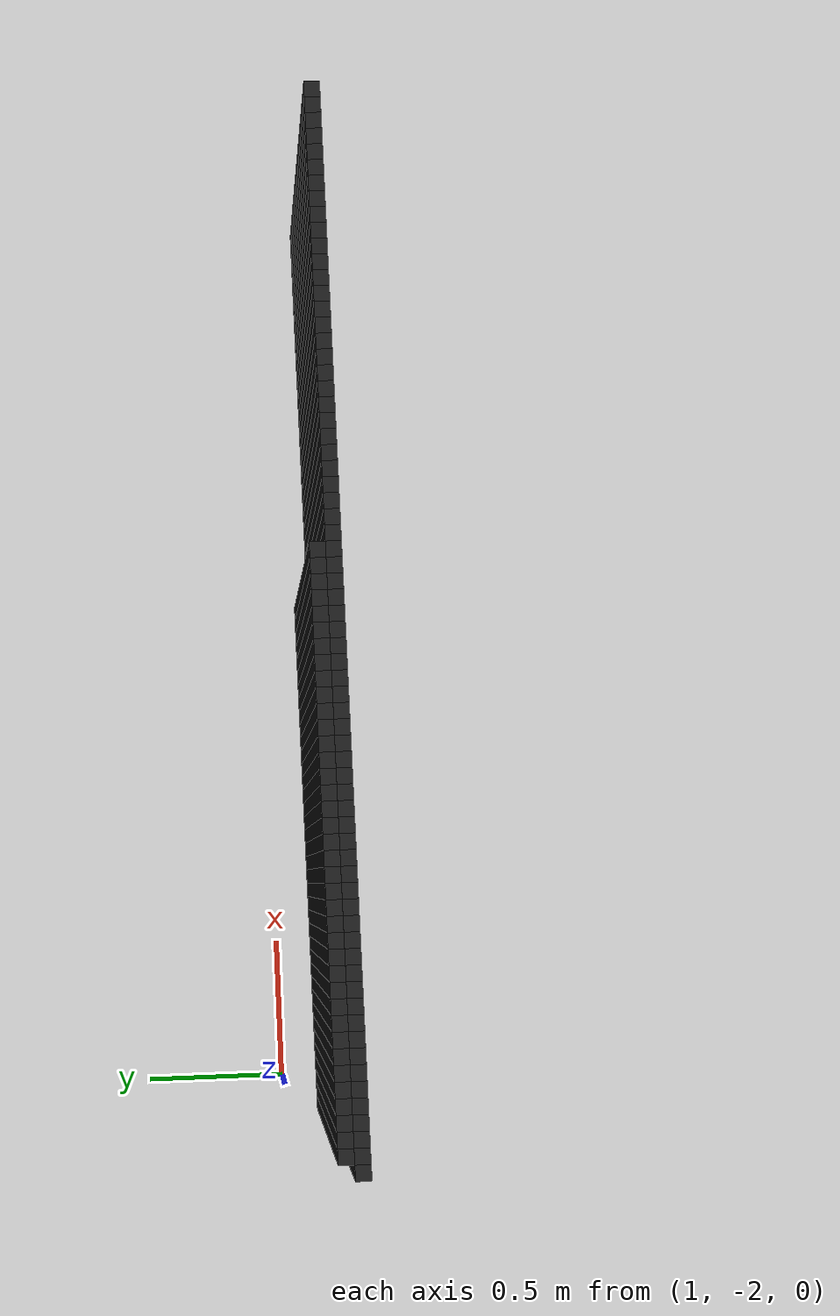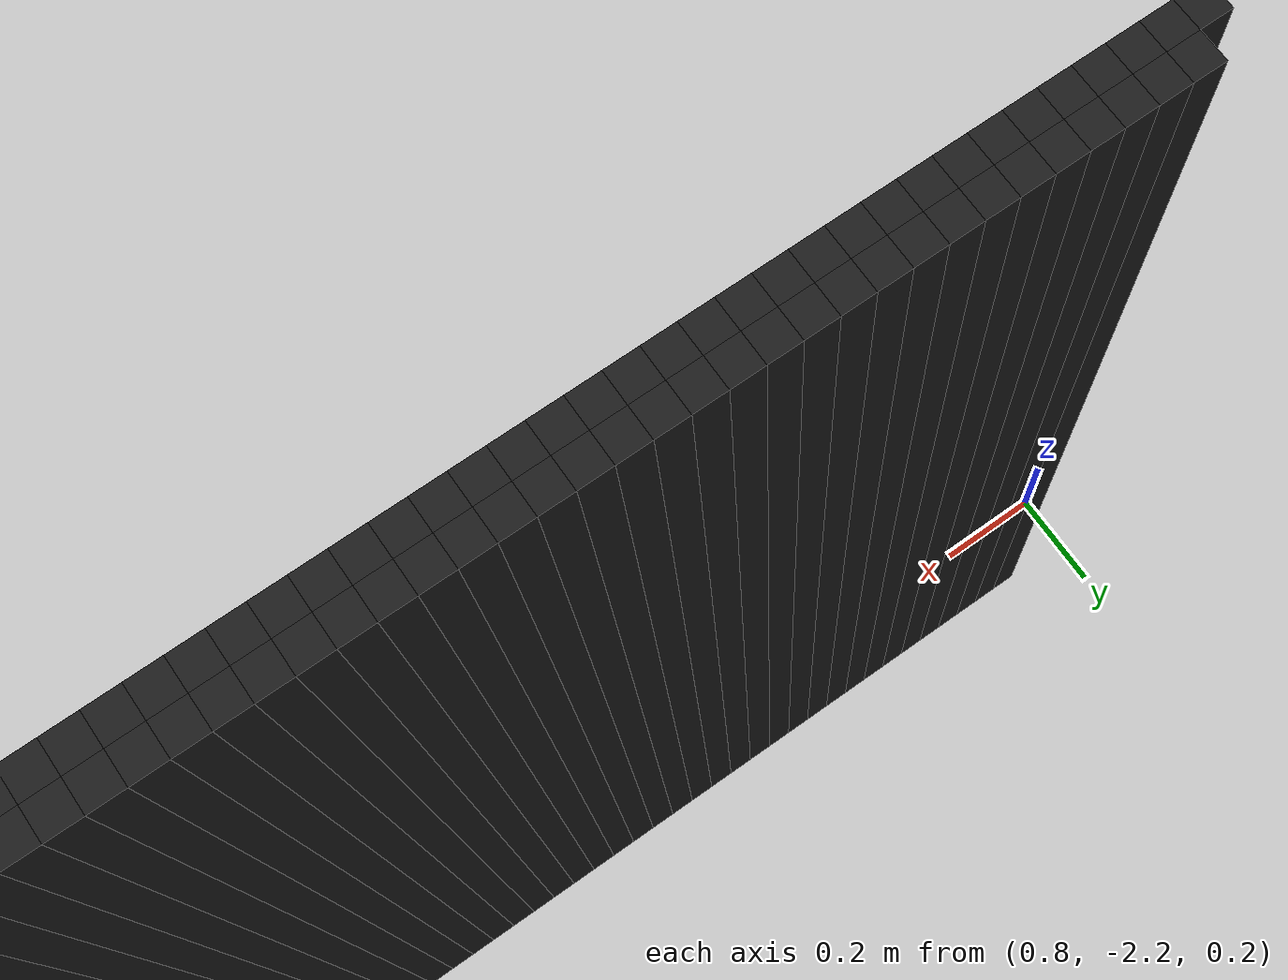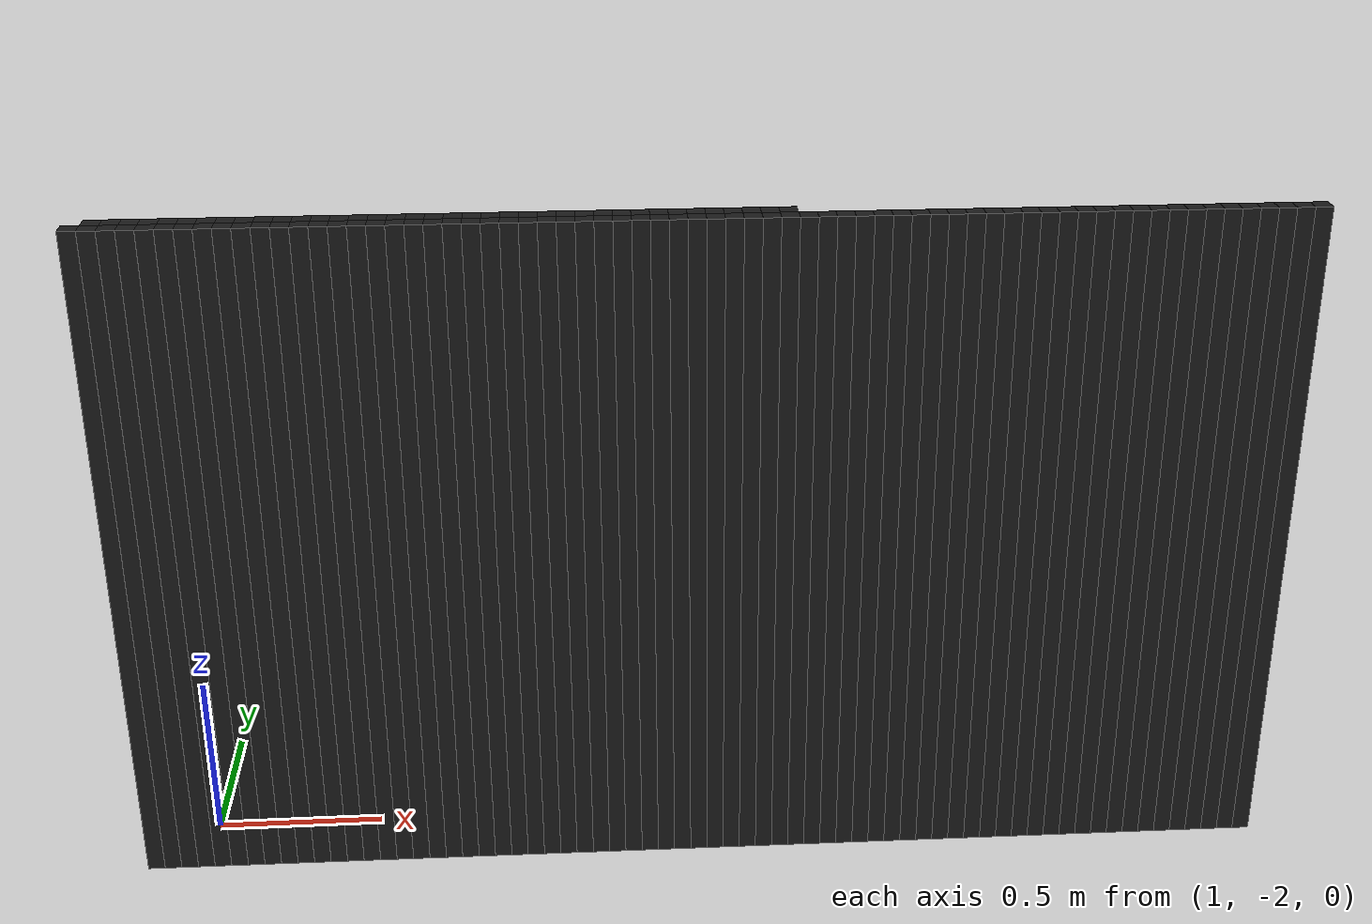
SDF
<sdf version="1.6">
 <model name="obstacle_108_210">
  <pose>0.8900000000000006 -2.1500000000000004 1.0 0 0 0</pose>
  <static>true</static>
  <link name="box_link">
   <collision name="box_collision"><geometry><box><size>0.05 0.05 2.0</size></box></geometry></collision>
   <visual name="box_visual">
    <geometry><box><size>0.05 0.05 2.0</size></box></geometry>
    <material><ambient>0 0 0 1</ambient><diffuse>0.1 0.1 0.1 1</diffuse></material>
   </visual>
  </link>
 </model>
 <model name="obstacle_109_210">
  <pose>0.9400000000000004 -2.1500000000000004 1.0 0 0 0</pose>
  <static>true</static>
  <link name="box_link">
   <collision name="box_collision"><geometry><box><size>0.05 0.05 2.0</size></box></geometry></collision>
   <visual name="box_visual">
    <geometry><box><size>0.05 0.05 2.0</size></box></geometry>
    <material><ambient>0 0 0 1</ambient><diffuse>0.1 0.1 0.1 1</diffuse></material>
   </visual>
  </link>
 </model>
 <model name="obstacle_110_210">
  <pose>0.9900000000000002 -2.1500000000000004 1.0 0 0 0</pose>
  <static>true</static>
  <link name="box_link">
   <collision name="box_collision"><geometry><box><size>0.05 0.05 2.0</size></box></geometry></collision>
   <visual name="box_visual">
    <geometry><box><size>0.05 0.05 2.0</size></box></geometry>
    <material><ambient>0 0 0 1</ambient><diffuse>0.1 0.1 0.1 1</diffuse></material>
   </visual>
  </link>
 </model>
 <model name="obstacle_111_210">
  <pose>1.040000000000001 -2.1500000000000004 1.0 0 0 0</pose>
  <static>true</static>
  <link name="box_link">
   <collision name="box_collision"><geometry><box><size>0.05 0.05 2.0</size></box></geometry></collision>
   <visual name="box_visual">
    <geometry><box><size>0.05 0.05 2.0</size></box></geometry>
    <material><ambient>0 0 0 1</ambient><diffuse>0.1 0.1 0.1 1</diffuse></material>
   </visual>
  </link>
 </model>
 <model name="obstacle_112_210">
  <pose>1.0900000000000007 -2.1500000000000004 1.0 0 0 0</pose>
  <static>true</static>
  <link name="box_link">
   <collision name="box_collision"><geometry><box><size>0.05 0.05 2.0</size></box></geometry></collision>
   <visual name="box_visual">
    <geometry><box><size>0.05 0.05 2.0</size></box></geometry>
    <material><ambient>0 0 0 1</ambient><diffuse>0.1 0.1 0.1 1</diffuse></material>
   </visual>
  </link>
 </model>
 <model name="obstacle_113_210">
  <pose>1.1400000000000006 -2.1500000000000004 1.0 0 0 0</pose>
  <static>true</static>
  <link name="box_link">
   <collision name="box_collision"><geometry><box><size>0.05 0.05 2.0</size></box></geometry></collision>
   <visual name="box_visual">
    <geometry><box><size>0.05 0.05 2.0</size></box></geometry>
    <material><ambient>0 0 0 1</ambient><diffuse>0.1 0.1 0.1 1</diffuse></material>
   </visual>
  </link>
 </model>
 <model name="obstacle_114_210">
  <pose>1.1900000000000004 -2.1500000000000004 1.0 0 0 0</pose>
  <static>true</static>
  <link name="box_link">
   <collision name="box_collision"><geometry><box><size>0.05 0.05 2.0</size></box></geometry></collision>
   <visual name="box_visual">
    <geometry><box><size>0.05 0.05 2.0</size></box></geometry>
    <material><ambient>0 0 0 1</ambient><diffuse>0.1 0.1 0.1 1</diffuse></material>
   </visual>
  </link>
 </model>
 <model name="obstacle_115_210">
  <pose>1.2400000000000002 -2.1500000000000004 1.0 0 0 0</pose>
  <static>true</static>
  <link name="box_link">
   <collision name="box_collision"><geometry><box><size>0.05 0.05 2.0</size></box></geometry></collision>
   <visual name="box_visual">
    <geometry><box><size>0.05 0.05 2.0</size></box></geometry>
    <material><ambient>0 0 0 1</ambient><diffuse>0.1 0.1 0.1 1</diffuse></material>
   </visual>
  </link>
 </model>
 <model name="obstacle_116_210">
  <pose>1.290000000000001 -2.1500000000000004 1.0 0 0 0</pose>
  <static>true</static>
  <link name="box_link">
   <collision name="box_collision"><geometry><box><size>0.05 0.05 2.0</size></box></geometry></collision>
   <visual name="box_visual">
    <geometry><box><size>0.05 0.05 2.0</size></box></geometry>
    <material><ambient>0 0 0 1</ambient><diffuse>0.1 0.1 0.1 1</diffuse></material>
   </visual>
  </link>
 </model>
 <model name="obstacle_117_210">
  <pose>1.3400000000000007 -2.1500000000000004 1.0 0 0 0</pose>
  <static>true</static>
  <link name="box_link">
   <collision name="box_collision"><geometry><box><size>0.05 0.05 2.0</size></box></geometry></collision>
   <visual name="box_visual">
    <geometry><box><size>0.05 0.05 2.0</size></box></geometry>
    <material><ambient>0 0 0 1</ambient><diffuse>0.1 0.1 0.1 1</diffuse></material>
   </visual>
  </link>
 </model>
 <model name="obstacle_118_210">
  <pose>1.3900000000000006 -2.1500000000000004 1.0 0 0 0</pose>
  <static>true</static>
  <link name="box_link">
   <collision name="box_collision"><geometry><box><size>0.05 0.05 2.0</size></box></geometry></collision>
   <visual name="box_visual">
    <geometry><box><size>0.05 0.05 2.0</size></box></geometry>
    <material><ambient>0 0 0 1</ambient><diffuse>0.1 0.1 0.1 1</diffuse></material>
   </visual>
  </link>
 </model>
 <model name="obstacle_119_210">
  <pose>1.4400000000000004 -2.1500000000000004 1.0 0 0 0</pose>
  <static>true</static>
  <link name="box_link">
   <collision name="box_collision"><geometry><box><size>0.05 0.05 2.0</size></box></geometry></collision>
   <visual name="box_visual">
    <geometry><box><size>0.05 0.05 2.0</size></box></geometry>
    <material><ambient>0 0 0 1</ambient><diffuse>0.1 0.1 0.1 1</diffuse></material>
   </visual>
  </link>
 </model>
 <model name="obstacle_120_210">
  <pose>1.4900000000000002 -2.1500000000000004 1.0 0 0 0</pose>
  <static>true</static>
  <link name="box_link">
   <collision name="box_collision"><geometry><box><size>0.05 0.05 2.0</size></box></geometry></collision>
   <visual name="box_visual">
    <geometry><box><size>0.05 0.05 2.0</size></box></geometry>
    <material><ambient>0 0 0 1</ambient><diffuse>0.1 0.1 0.1 1</diffuse></material>
   </visual>
  </link>
 </model>
 <model name="obstacle_121_210">
  <pose>1.540000000000001 -2.1500000000000004 1.0 0 0 0</pose>
  <static>true</static>
  <link name="box_link">
   <collision name="box_collision"><geometry><box><size>0.05 0.05 2.0</size></box></geometry></collision>
   <visual name="box_visual">
    <geometry><box><size>0.05 0.05 2.0</size></box></geometry>
    <material><ambient>0 0 0 1</ambient><diffuse>0.1 0.1 0.1 1</diffuse></material>
   </visual>
  </link>
 </model>
 <model name="obstacle_122_210">
  <pose>1.5900000000000007 -2.1500000000000004 1.0 0 0 0</pose>
  <static>true</static>
  <link name="box_link">
   <collision name="box_collision"><geometry><box><size>0.05 0.05 2.0</size></box></geometry></collision>
   <visual name="box_visual">
    <geometry><box><size>0.05 0.05 2.0</size></box></geometry>
    <material><ambient>0 0 0 1</ambient><diffuse>0.1 0.1 0.1 1</diffuse></material>
   </visual>
  </link>
 </model>
 <model name="obstacle_123_210">
  <pose>1.6400000000000006 -2.1500000000000004 1.0 0 0 0</pose>
  <static>true</static>
  <link name="box_link">
   <collision name="box_collision"><geometry><box><size>0.05 0.05 2.0</size></box></geometry></collision>
   <visual name="box_visual">
    <geometry><box><size>0.05 0.05 2.0</size></box></geometry>
    <material><ambient>0 0 0 1</ambient><diffuse>0.1 0.1 0.1 1</diffuse></material>
   </visual>
  </link>
 </model>
 <model name="obstacle_124_210">
  <pose>1.6900000000000004 -2.1500000000000004 1.0 0 0 0</pose>
  <static>true</static>
  <link name="box_link">
   <collision name="box_collision"><geometry><box><size>0.05 0.05 2.0</size></box></geometry></collision>
   <visual name="box_visual">
    <geometry><box><size>0.05 0.05 2.0</size></box></geometry>
    <material><ambient>0 0 0 1</ambient><diffuse>0.1 0.1 0.1 1</diffuse></material>
   </visual>
  </link>
 </model>
 <model name="obstacle_125_210">
  <pose>1.7400000000000002 -2.1500000000000004 1.0 0 0 0</pose>
  <static>true</static>
  <link name="box_link">
   <collision name="box_collision"><geometry><box><size>0.05 0.05 2.0</size></box></geometry></collision>
   <visual name="box_visual">
    <geometry><box><size>0.05 0.05 2.0</size></box></geometry>
    <material><ambient>0 0 0 1</ambient><diffuse>0.1 0.1 0.1 1</diffuse></material>
   </visual>
  </link>
 </model>
 <model name="obstacle_126_210">
  <pose>1.790000000000001 -2.1500000000000004 1.0 0 0 0</pose>
  <static>true</static>
  <link name="box_link">
   <collision name="box_collision"><geometry><box><size>0.05 0.05 2.0</size></box></geometry></collision>
   <visual name="box_visual">
    <geometry><box><size>0.05 0.05 2.0</size></box></geometry>
    <material><ambient>0 0 0 1</ambient><diffuse>0.1 0.1 0.1 1</diffuse></material>
   </visual>
  </link>
 </model>
 <model name="obstacle_127_210">
  <pose>1.8400000000000007 -2.1500000000000004 1.0 0 0 0</pose>
  <static>true</static>
  <link name="box_link">
   <collision name="box_collision"><geometry><box><size>0.05 0.05 2.0</size></box></geometry></collision>
   <visual name="box_visual">
    <geometry><box><size>0.05 0.05 2.0</size></box></geometry>
    <material><ambient>0 0 0 1</ambient><diffuse>0.1 0.1 0.1 1</diffuse></material>
   </visual>
  </link>
 </model>
 <model name="obstacle_128_210">
  <pose>1.8900000000000006 -2.1500000000000004 1.0 0 0 0</pose>
  <static>true</static>
  <link name="box_link">
   <collision name="box_collision"><geometry><box><size>0.05 0.05 2.0</size></box></geometry></collision>
   <visual name="box_visual">
    <geometry><box><size>0.05 0.05 2.0</size></box></geometry>
    <material><ambient>0 0 0 1</ambient><diffuse>0.1 0.1 0.1 1</diffuse></material>
   </visual>
  </link>
 </model>
 <model name="obstacle_129_210">
  <pose>1.9400000000000004 -2.1500000000000004 1.0 0 0 0</pose>
  <static>true</static>
  <link name="box_link">
   <collision name="box_collision"><geometry><box><size>0.05 0.05 2.0</size></box></geometry></collision>
   <visual name="box_visual">
    <geometry><box><size>0.05 0.05 2.0</size></box></geometry>
    <material><ambient>0 0 0 1</ambient><diffuse>0.1 0.1 0.1 1</diffuse></material>
   </visual>
  </link>
 </model>
 <model name="obstacle_130_210">
  <pose>1.9900000000000002 -2.1500000000000004 1.0 0 0 0</pose>
  <static>true</static>
  <link name="box_link">
   <collision name="box_collision"><geometry><box><size>0.05 0.05 2.0</size></box></geometry></collision>
   <visual name="box_visual">
    <geometry><box><size>0.05 0.05 2.0</size></box></geometry>
    <material><ambient>0 0 0 1</ambient><diffuse>0.1 0.1 0.1 1</diffuse></material>
   </visual>
  </link>
 </model>
 <model name="obstacle_131_210">
  <pose>2.040000000000001 -2.1500000000000004 1.0 0 0 0</pose>
  <static>true</static>
  <link name="box_link">
   <collision name="box_collision"><geometry><box><size>0.05 0.05 2.0</size></box></geometry></collision>
   <visual name="box_visual">
    <geometry><box><size>0.05 0.05 2.0</size></box></geometry>
    <material><ambient>0 0 0 1</ambient><diffuse>0.1 0.1 0.1 1</diffuse></material>
   </visual>
  </link>
 </model>
 <model name="obstacle_132_210">
  <pose>2.0900000000000007 -2.1500000000000004 1.0 0 0 0</pose>
  <static>true</static>
  <link name="box_link">
   <collision name="box_collision"><geometry><box><size>0.05 0.05 2.0</size></box></geometry></collision>
   <visual name="box_visual">
    <geometry><box><size>0.05 0.05 2.0</size></box></geometry>
    <material><ambient>0 0 0 1</ambient><diffuse>0.1 0.1 0.1 1</diffuse></material>
   </visual>
  </link>
 </model>
 <model name="obstacle_133_210">
  <pose>2.1400000000000006 -2.1500000000000004 1.0 0 0 0</pose>
  <static>true</static>
  <link name="box_link">
   <collision name="box_collision"><geometry><box><size>0.05 0.05 2.0</size></box></geometry></collision>
   <visual name="box_visual">
    <geometry><box><size>0.05 0.05 2.0</size></box></geometry>
    <material><ambient>0 0 0 1</ambient><diffuse>0.1 0.1 0.1 1</diffuse></material>
   </visual>
  </link>
 </model>
 <model name="obstacle_134_210">
  <pose>2.1900000000000004 -2.1500000000000004 1.0 0 0 0</pose>
  <static>true</static>
  <link name="box_link">
   <collision name="box_collision"><geometry><box><size>0.05 0.05 2.0</size></box></geometry></collision>
   <visual name="box_visual">
    <geometry><box><size>0.05 0.05 2.0</size></box></geometry>
    <material><ambient>0 0 0 1</ambient><diffuse>0.1 0.1 0.1 1</diffuse></material>
   </visual>
  </link>
 </model>
 <model name="obstacle_135_210">
  <pose>2.24 -2.1500000000000004 1.0 0 0 0</pose>
  <static>true</static>
  <link name="box_link">
   <collision name="box_collision"><geometry><box><size>0.05 0.05 2.0</size></box></geometry></collision>
   <visual name="box_visual">
    <geometry><box><size>0.05 0.05 2.0</size></box></geometry>
    <material><ambient>0 0 0 1</ambient><diffuse>0.1 0.1 0.1 1</diffuse></material>
   </visual>
  </link>
 </model>
 <model name="obstacle_136_210">
  <pose>2.290000000000001 -2.1500000000000004 1.0 0 0 0</pose>
  <static>true</static>
  <link name="box_link">
   <collision name="box_collision"><geometry><box><size>0.05 0.05 2.0</size></box></geometry></collision>
   <visual name="box_visual">
    <geometry><box><size>0.05 0.05 2.0</size></box></geometry>
    <material><ambient>0 0 0 1</ambient><diffuse>0.1 0.1 0.1 1</diffuse></material>
   </visual>
  </link>
 </model>
 <model name="obstacle_137_210">
  <pose>2.3400000000000007 -2.1500000000000004 1.0 0 0 0</pose>
  <static>true</static>
  <link name="box_link">
   <collision name="box_collision"><geometry><box><size>0.05 0.05 2.0</size></box></geometry></collision>
   <visual name="box_visual">
    <geometry><box><size>0.05 0.05 2.0</size></box></geometry>
    <material><ambient>0 0 0 1</ambient><diffuse>0.1 0.1 0.1 1</diffuse></material>
   </visual>
  </link>
 </model>
 <model name="obstacle_138_210">
  <pose>2.3900000000000006 -2.1500000000000004 1.0 0 0 0</pose>
  <static>true</static>
  <link name="box_link">
   <collision name="box_collision"><geometry><box><size>0.05 0.05 2.0</size></box></geometry></collision>
   <visual name="box_visual">
    <geometry><box><size>0.05 0.05 2.0</size></box></geometry>
    <material><ambient>0 0 0 1</ambient><diffuse>0.1 0.1 0.1 1</diffuse></material>
   </visual>
  </link>
 </model>
 <model name="obstacle_139_210">
  <pose>2.4400000000000004 -2.1500000000000004 1.0 0 0 0</pose>
  <static>true</static>
  <link name="box_link">
   <collision name="box_collision"><geometry><box><size>0.05 0.05 2.0</size></box></geometry></collision>
   <visual name="box_visual">
    <geometry><box><size>0.05 0.05 2.0</size></box></geometry>
    <material><ambient>0 0 0 1</ambient><diffuse>0.1 0.1 0.1 1</diffuse></material>
   </visual>
  </link>
 </model>
 <model name="obstacle_140_210">
  <pose>2.49 -2.1500000000000004 1.0 0 0 0</pose>
  <static>true</static>
  <link name="box_link">
   <collision name="box_collision"><geometry><box><size>0.05 0.05 2.0</size></box></geometry></collision>
   <visual name="box_visual">
    <geometry><box><size>0.05 0.05 2.0</size></box></geometry>
    <material><ambient>0 0 0 1</ambient><diffuse>0.1 0.1 0.1 1</diffuse></material>
   </visual>
  </link>
 </model>
 <model name="obstacle_141_210">
  <pose>2.540000000000001 -2.1500000000000004 1.0 0 0 0</pose>
  <static>true</static>
  <link name="box_link">
   <collision name="box_collision"><geometry><box><size>0.05 0.05 2.0</size></box></geometry></collision>
   <visual name="box_visual">
    <geometry><box><size>0.05 0.05 2.0</size></box></geometry>
    <material><ambient>0 0 0 1</ambient><diffuse>0.1 0.1 0.1 1</diffuse></material>
   </visual>
  </link>
 </model>
 <model name="obstacle_142_210">
  <pose>2.5900000000000007 -2.1500000000000004 1.0 0 0 0</pose>
  <static>true</static>
  <link name="box_link">
   <collision name="box_collision"><geometry><box><size>0.05 0.05 2.0</size></box></geometry></collision>
   <visual name="box_visual">
    <geometry><box><size>0.05 0.05 2.0</size></box></geometry>
    <material><ambient>0 0 0 1</ambient><diffuse>0.1 0.1 0.1 1</diffuse></material>
   </visual>
  </link>
 </model>
 <model name="obstacle_143_210">
  <pose>2.6400000000000006 -2.1500000000000004 1.0 0 0 0</pose>
  <static>true</static>
  <link name="box_link">
   <collision name="box_collision"><geometry><box><size>0.05 0.05 2.0</size></box></geometry></collision>
   <visual name="box_visual">
    <geometry><box><size>0.05 0.05 2.0</size></box></geometry>
    <material><ambient>0 0 0 1</ambient><diffuse>0.1 0.1 0.1 1</diffuse></material>
   </visual>
  </link>
 </model>
 <model name="obstacle_144_210">
  <pose>2.6900000000000004 -2.1500000000000004 1.0 0 0 0</pose>
  <static>true</static>
  <link name="box_link">
   <collision name="box_collision"><geometry><box><size>0.05 0.05 2.0</size></box></geometry></collision>
   <visual name="box_visual">
    <geometry><box><size>0.05 0.05 2.0</size></box></geometry>
    <material><ambient>0 0 0 1</ambient><diffuse>0.1 0.1 0.1 1</diffuse></material>
   </visual>
  </link>
 </model>
 <model name="obstacle_145_210">
  <pose>2.74 -2.1500000000000004 1.0 0 0 0</pose>
  <static>true</static>
  <link name="box_link">
   <collision name="box_collision"><geometry><box><size>0.05 0.05 2.0</size></box></geometry></collision>
   <visual name="box_visual">
    <geometry><box><size>0.05 0.05 2.0</size></box></geometry>
    <material><ambient>0 0 0 1</ambient><diffuse>0.1 0.1 0.1 1</diffuse></material>
   </visual>
  </link>
 </model>
 <model name="obstacle_107_211">
  <pose>0.8400000000000007 -2.2 1.0 0 0 0</pose>
  <static>true</static>
  <link name="box_link">
   <collision name="box_collision"><geometry><box><size>0.05 0.05 2.0</size></box></geometry></collision>
   <visual name="box_visual">
    <geometry><box><size>0.05 0.05 2.0</size></box></geometry>
    <material><ambient>0 0 0 1</ambient><diffuse>0.1 0.1 0.1 1</diffuse></material>
   </visual>
  </link>
 </model>
 <model name="obstacle_108_211">
  <pose>0.8900000000000006 -2.2 1.0 0 0 0</pose>
  <static>true</static>
  <link name="box_link">
   <collision name="box_collision"><geometry><box><size>0.05 0.05 2.0</size></box></geometry></collision>
   <visual name="box_visual">
    <geometry><box><size>0.05 0.05 2.0</size></box></geometry>
    <material><ambient>0 0 0 1</ambient><diffuse>0.1 0.1 0.1 1</diffuse></material>
   </visual>
  </link>
 </model>
 <model name="obstacle_109_211">
  <pose>0.9400000000000004 -2.2 1.0 0 0 0</pose>
  <static>true</static>
  <link name="box_link">
   <collision name="box_collision"><geometry><box><size>0.05 0.05 2.0</size></box></geometry></collision>
   <visual name="box_visual">
    <geometry><box><size>0.05 0.05 2.0</size></box></geometry>
    <material><ambient>0 0 0 1</ambient><diffuse>0.1 0.1 0.1 1</diffuse></material>
   </visual>
  </link>
 </model>
 <model name="obstacle_110_211">
  <pose>0.9900000000000002 -2.2 1.0 0 0 0</pose>
  <static>true</static>
  <link name="box_link">
   <collision name="box_collision"><geometry><box><size>0.05 0.05 2.0</size></box></geometry></collision>
   <visual name="box_visual">
    <geometry><box><size>0.05 0.05 2.0</size></box></geometry>
    <material><ambient>0 0 0 1</ambient><diffuse>0.1 0.1 0.1 1</diffuse></material>
   </visual>
  </link>
 </model>
 <model name="obstacle_111_211">
  <pose>1.040000000000001 -2.2 1.0 0 0 0</pose>
  <static>true</static>
  <link name="box_link">
   <collision name="box_collision"><geometry><box><size>0.05 0.05 2.0</size></box></geometry></collision>
   <visual name="box_visual">
    <geometry><box><size>0.05 0.05 2.0</size></box></geometry>
    <material><ambient>0 0 0 1</ambient><diffuse>0.1 0.1 0.1 1</diffuse></material>
   </visual>
  </link>
 </model>
 <model name="obstacle_112_211">
  <pose>1.0900000000000007 -2.2 1.0 0 0 0</pose>
  <static>true</static>
  <link name="box_link">
   <collision name="box_collision"><geometry><box><size>0.05 0.05 2.0</size></box></geometry></collision>
   <visual name="box_visual">
    <geometry><box><size>0.05 0.05 2.0</size></box></geometry>
    <material><ambient>0 0 0 1</ambient><diffuse>0.1 0.1 0.1 1</diffuse></material>
   </visual>
  </link>
 </model>
 <model name="obstacle_113_211">
  <pose>1.1400000000000006 -2.2 1.0 0 0 0</pose>
  <static>true</static>
  <link name="box_link">
   <collision name="box_collision"><geometry><box><size>0.05 0.05 2.0</size></box></geometry></collision>
   <visual name="box_visual">
    <geometry><box><size>0.05 0.05 2.0</size></box></geometry>
    <material><ambient>0 0 0 1</ambient><diffuse>0.1 0.1 0.1 1</diffuse></material>
   </visual>
  </link>
 </model>
 <model name="obstacle_114_211">
  <pose>1.1900000000000004 -2.2 1.0 0 0 0</pose>
  <static>true</static>
  <link name="box_link">
   <collision name="box_collision"><geometry><box><size>0.05 0.05 2.0</size></box></geometry></collision>
   <visual name="box_visual">
    <geometry><box><size>0.05 0.05 2.0</size></box></geometry>
    <material><ambient>0 0 0 1</ambient><diffuse>0.1 0.1 0.1 1</diffuse></material>
   </visual>
  </link>
 </model>
 <model name="obstacle_115_211">
  <pose>1.2400000000000002 -2.2 1.0 0 0 0</pose>
  <static>true</static>
  <link name="box_link">
   <collision name="box_collision"><geometry><box><size>0.05 0.05 2.0</size></box></geometry></collision>
   <visual name="box_visual">
    <geometry><box><size>0.05 0.05 2.0</size></box></geometry>
    <material><ambient>0 0 0 1</ambient><diffuse>0.1 0.1 0.1 1</diffuse></material>
   </visual>
  </link>
 </model>
 <model name="obstacle_116_211">
  <pose>1.290000000000001 -2.2 1.0 0 0 0</pose>
  <static>true</static>
  <link name="box_link">
   <collision name="box_collision"><geometry><box><size>0.05 0.05 2.0</size></box></geometry></collision>
   <visual name="box_visual">
    <geometry><box><size>0.05 0.05 2.0</size></box></geometry>
    <material><ambient>0 0 0 1</ambient><diffuse>0.1 0.1 0.1 1</diffuse></material>
   </visual>
  </link>
 </model>
 <model name="obstacle_117_211">
  <pose>1.3400000000000007 -2.2 1.0 0 0 0</pose>
  <static>true</static>
  <link name="box_link">
   <collision name="box_collision"><geometry><box><size>0.05 0.05 2.0</size></box></geometry></collision>
   <visual name="box_visual">
    <geometry><box><size>0.05 0.05 2.0</size></box></geometry>
    <material><ambient>0 0 0 1</ambient><diffuse>0.1 0.1 0.1 1</diffuse></material>
   </visual>
  </link>
 </model>
 <model name="obstacle_118_211">
  <pose>1.3900000000000006 -2.2 1.0 0 0 0</pose>
  <static>true</static>
  <link name="box_link">
   <collision name="box_collision"><geometry><box><size>0.05 0.05 2.0</size></box></geometry></collision>
   <visual name="box_visual">
    <geometry><box><size>0.05 0.05 2.0</size></box></geometry>
    <material><ambient>0 0 0 1</ambient><diffuse>0.1 0.1 0.1 1</diffuse></material>
   </visual>
  </link>
 </model>
 <model name="obstacle_119_211">
  <pose>1.4400000000000004 -2.2 1.0 0 0 0</pose>
  <static>true</static>
  <link name="box_link">
   <collision name="box_collision"><geometry><box><size>0.05 0.05 2.0</size></box></geometry></collision>
   <visual name="box_visual">
    <geometry><box><size>0.05 0.05 2.0</size></box></geometry>
    <material><ambient>0 0 0 1</ambient><diffuse>0.1 0.1 0.1 1</diffuse></material>
   </visual>
  </link>
 </model>
 <model name="obstacle_120_211">
  <pose>1.4900000000000002 -2.2 1.0 0 0 0</pose>
  <static>true</static>
  <link name="box_link">
   <collision name="box_collision"><geometry><box><size>0.05 0.05 2.0</size></box></geometry></collision>
   <visual name="box_visual">
    <geometry><box><size>0.05 0.05 2.0</size></box></geometry>
    <material><ambient>0 0 0 1</ambient><diffuse>0.1 0.1 0.1 1</diffuse></material>
   </visual>
  </link>
 </model>
 <model name="obstacle_121_211">
  <pose>1.540000000000001 -2.2 1.0 0 0 0</pose>
  <static>true</static>
  <link name="box_link">
   <collision name="box_collision"><geometry><box><size>0.05 0.05 2.0</size></box></geometry></collision>
   <visual name="box_visual">
    <geometry><box><size>0.05 0.05 2.0</size></box></geometry>
    <material><ambient>0 0 0 1</ambient><diffuse>0.1 0.1 0.1 1</diffuse></material>
   </visual>
  </link>
 </model>
 <model name="obstacle_122_211">
  <pose>1.5900000000000007 -2.2 1.0 0 0 0</pose>
  <static>true</static>
  <link name="box_link">
   <collision name="box_collision"><geometry><box><size>0.05 0.05 2.0</size></box></geometry></collision>
   <visual name="box_visual">
    <geometry><box><size>0.05 0.05 2.0</size></box></geometry>
    <material><ambient>0 0 0 1</ambient><diffuse>0.1 0.1 0.1 1</diffuse></material>
   </visual>
  </link>
 </model>
 <model name="obstacle_123_211">
  <pose>1.6400000000000006 -2.2 1.0 0 0 0</pose>
  <static>true</static>
  <link name="box_link">
   <collision name="box_collision"><geometry><box><size>0.05 0.05 2.0</size></box></geometry></collision>
   <visual name="box_visual">
    <geometry><box><size>0.05 0.05 2.0</size></box></geometry>
    <material><ambient>0 0 0 1</ambient><diffuse>0.1 0.1 0.1 1</diffuse></material>
   </visual>
  </link>
 </model>
 <model name="obstacle_124_211">
  <pose>1.6900000000000004 -2.2 1.0 0 0 0</pose>
  <static>true</static>
  <link name="box_link">
   <collision name="box_collision"><geometry><box><size>0.05 0.05 2.0</size></box></geometry></collision>
   <visual name="box_visual">
    <geometry><box><size>0.05 0.05 2.0</size></box></geometry>
    <material><ambient>0 0 0 1</ambient><diffuse>0.1 0.1 0.1 1</diffuse></material>
   </visual>
  </link>
 </model>
 <model name="obstacle_125_211">
  <pose>1.7400000000000002 -2.2 1.0 0 0 0</pose>
  <static>true</static>
  <link name="box_link">
   <collision name="box_collision"><geometry><box><size>0.05 0.05 2.0</size></box></geometry></collision>
   <visual name="box_visual">
    <geometry><box><size>0.05 0.05 2.0</size></box></geometry>
    <material><ambient>0 0 0 1</ambient><diffuse>0.1 0.1 0.1 1</diffuse></material>
   </visual>
  </link>
 </model>
 <model name="obstacle_126_211">
  <pose>1.790000000000001 -2.2 1.0 0 0 0</pose>
  <static>true</static>
  <link name="box_link">
   <collision name="box_collision"><geometry><box><size>0.05 0.05 2.0</size></box></geometry></collision>
   <visual name="box_visual">
    <geometry><box><size>0.05 0.05 2.0</size></box></geometry>
    <material><ambient>0 0 0 1</ambient><diffuse>0.1 0.1 0.1 1</diffuse></material>
   </visual>
  </link>
 </model>
 <model name="obstacle_127_211">
  <pose>1.8400000000000007 -2.2 1.0 0 0 0</pose>
  <static>true</static>
  <link name="box_link">
   <collision name="box_collision"><geometry><box><size>0.05 0.05 2.0</size></box></geometry></collision>
   <visual name="box_visual">
    <geometry><box><size>0.05 0.05 2.0</size></box></geometry>
    <material><ambient>0 0 0 1</ambient><diffuse>0.1 0.1 0.1 1</diffuse></material>
   </visual>
  </link>
 </model>
 <model name="obstacle_128_211">
  <pose>1.8900000000000006 -2.2 1.0 0 0 0</pose>
  <static>true</static>
  <link name="box_link">
   <collision name="box_collision"><geometry><box><size>0.05 0.05 2.0</size></box></geometry></collision>
   <visual name="box_visual">
    <geometry><box><size>0.05 0.05 2.0</size></box></geometry>
    <material><ambient>0 0 0 1</ambient><diffuse>0.1 0.1 0.1 1</diffuse></material>
   </visual>
  </link>
 </model>
 <model name="obstacle_129_211">
  <pose>1.9400000000000004 -2.2 1.0 0 0 0</pose>
  <static>true</static>
  <link name="box_link">
   <collision name="box_collision"><geometry><box><size>0.05 0.05 2.0</size></box></geometry></collision>
   <visual name="box_visual">
    <geometry><box><size>0.05 0.05 2.0</size></box></geometry>
    <material><ambient>0 0 0 1</ambient><diffuse>0.1 0.1 0.1 1</diffuse></material>
   </visual>
  </link>
 </model>
 <model name="obstacle_130_211">
  <pose>1.9900000000000002 -2.2 1.0 0 0 0</pose>
  <static>true</static>
  <link name="box_link">
   <collision name="box_collision"><geometry><box><size>0.05 0.05 2.0</size></box></geometry></collision>
   <visual name="box_visual">
    <geometry><box><size>0.05 0.05 2.0</size></box></geometry>
    <material><ambient>0 0 0 1</ambient><diffuse>0.1 0.1 0.1 1</diffuse></material>
   </visual>
  </link>
 </model>
 <model name="obstacle_131_211">
  <pose>2.040000000000001 -2.2 1.0 0 0 0</pose>
  <static>true</static>
  <link name="box_link">
   <collision name="box_collision"><geometry><box><size>0.05 0.05 2.0</size></box></geometry></collision>
   <visual name="box_visual">
    <geometry><box><size>0.05 0.05 2.0</size></box></geometry>
    <material><ambient>0 0 0 1</ambient><diffuse>0.1 0.1 0.1 1</diffuse></material>
   </visual>
  </link>
 </model>
 <model name="obstacle_132_211">
  <pose>2.0900000000000007 -2.2 1.0 0 0 0</pose>
  <static>true</static>
  <link name="box_link">
   <collision name="box_collision"><geometry><box><size>0.05 0.05 2.0</size></box></geometry></collision>
   <visual name="box_visual">
    <geometry><box><size>0.05 0.05 2.0</size></box></geometry>
    <material><ambient>0 0 0 1</ambient><diffuse>0.1 0.1 0.1 1</diffuse></material>
   </visual>
  </link>
 </model>
 <model name="obstacle_133_211">
  <pose>2.1400000000000006 -2.2 1.0 0 0 0</pose>
  <static>true</static>
  <link name="box_link">
   <collision name="box_collision"><geometry><box><size>0.05 0.05 2.0</size></box></geometry></collision>
   <visual name="box_visual">
    <geometry><box><size>0.05 0.05 2.0</size></box></geometry>
    <material><ambient>0 0 0 1</ambient><diffuse>0.1 0.1 0.1 1</diffuse></material>
   </visual>
  </link>
 </model>
 <model name="obstacle_134_211">
  <pose>2.1900000000000004 -2.2 1.0 0 0 0</pose>
  <static>true</static>
  <link name="box_link">
   <collision name="box_collision"><geometry><box><size>0.05 0.05 2.0</size></box></geometry></collision>
   <visual name="box_visual">
    <geometry><box><size>0.05 0.05 2.0</size></box></geometry>
    <material><ambient>0 0 0 1</ambient><diffuse>0.1 0.1 0.1 1</diffuse></material>
   </visual>
  </link>
 </model>
 <model name="obstacle_135_211">
  <pose>2.24 -2.2 1.0 0 0 0</pose>
  <static>true</static>
  <link name="box_link">
   <collision name="box_collision"><geometry><box><size>0.05 0.05 2.0</size></box></geometry></collision>
   <visual name="box_visual">
    <geometry><box><size>0.05 0.05 2.0</size></box></geometry>
    <material><ambient>0 0 0 1</ambient><diffuse>0.1 0.1 0.1 1</diffuse></material>
   </visual>
  </link>
 </model>
 <model name="obstacle_136_211">
  <pose>2.290000000000001 -2.2 1.0 0 0 0</pose>
  <static>true</static>
  <link name="box_link">
   <collision name="box_collision"><geometry><box><size>0.05 0.05 2.0</size></box></geometry></collision>
   <visual name="box_visual">
    <geometry><box><size>0.05 0.05 2.0</size></box></geometry>
    <material><ambient>0 0 0 1</ambient><diffuse>0.1 0.1 0.1 1</diffuse></material>
   </visual>
  </link>
 </model>
 <model name="obstacle_137_211">
  <pose>2.3400000000000007 -2.2 1.0 0 0 0</pose>
  <static>true</static>
  <link name="box_link">
   <collision name="box_collision"><geometry><box><size>0.05 0.05 2.0</size></box></geometry></collision>
   <visual name="box_visual">
    <geometry><box><size>0.05 0.05 2.0</size></box></geometry>
    <material><ambient>0 0 0 1</ambient><diffuse>0.1 0.1 0.1 1</diffuse></material>
   </visual>
  </link>
 </model>
 <model name="obstacle_138_211">
  <pose>2.3900000000000006 -2.2 1.0 0 0 0</pose>
  <static>true</static>
  <link name="box_link">
   <collision name="box_collision"><geometry><box><size>0.05 0.05 2.0</size></box></geometry></collision>
   <visual name="box_visual">
    <geometry><box><size>0.05 0.05 2.0</size></box></geometry>
    <material><ambient>0 0 0 1</ambient><diffuse>0.1 0.1 0.1 1</diffuse></material>
   </visual>
  </link>
 </model>
 <model name="obstacle_139_211">
  <pose>2.4400000000000004 -2.2 1.0 0 0 0</pose>
  <static>true</static>
  <link name="box_link">
   <collision name="box_collision"><geometry><box><size>0.05 0.05 2.0</size></box></geometry></collision>
   <visual name="box_visual">
    <geometry><box><size>0.05 0.05 2.0</size></box></geometry>
    <material><ambient>0 0 0 1</ambient><diffuse>0.1 0.1 0.1 1</diffuse></material>
   </visual>
  </link>
 </model>
 <model name="obstacle_140_211">
  <pose>2.49 -2.2 1.0 0 0 0</pose>
  <static>true</static>
  <link name="box_link">
   <collision name="box_collision"><geometry><box><size>0.05 0.05 2.0</size></box></geometry></collision>
   <visual name="box_visual">
    <geometry><box><size>0.05 0.05 2.0</size></box></geometry>
    <material><ambient>0 0 0 1</ambient><diffuse>0.1 0.1 0.1 1</diffuse></material>
   </visual>
  </link>
 </model>
 <model name="obstacle_141_211">
  <pose>2.540000000000001 -2.2 1.0 0 0 0</pose>
  <static>true</static>
  <link name="box_link">
   <collision name="box_collision"><geometry><box><size>0.05 0.05 2.0</size></box></geometry></collision>
   <visual name="box_visual">
    <geometry><box><size>0.05 0.05 2.0</size></box></geometry>
    <material><ambient>0 0 0 1</ambient><diffuse>0.1 0.1 0.1 1</diffuse></material>
   </visual>
  </link>
 </model>
 <model name="obstacle_142_211">
  <pose>2.5900000000000007 -2.2 1.0 0 0 0</pose>
  <static>true</static>
  <link name="box_link">
   <collision name="box_collision"><geometry><box><size>0.05 0.05 2.0</size></box></geometry></collision>
   <visual name="box_visual">
    <geometry><box><size>0.05 0.05 2.0</size></box></geometry>
    <material><ambient>0 0 0 1</ambient><diffuse>0.1 0.1 0.1 1</diffuse></material>
   </visual>
  </link>
 </model>
 <model name="obstacle_143_211">
  <pose>2.6400000000000006 -2.2 1.0 0 0 0</pose>
  <static>true</static>
  <link name="box_link">
   <collision name="box_collision"><geometry><box><size>0.05 0.05 2.0</size></box></geometry></collision>
   <visual name="box_visual">
    <geometry><box><size>0.05 0.05 2.0</size></box></geometry>
    <material><ambient>0 0 0 1</ambient><diffuse>0.1 0.1 0.1 1</diffuse></material>
   </visual>
  </link>
 </model>
 <model name="obstacle_144_211">
  <pose>2.6900000000000004 -2.2 1.0 0 0 0</pose>
  <static>true</static>
  <link name="box_link">
   <collision name="box_collision"><geometry><box><size>0.05 0.05 2.0</size></box></geometry></collision>
   <visual name="box_visual">
    <geometry><box><size>0.05 0.05 2.0</size></box></geometry>
    <material><ambient>0 0 0 1</ambient><diffuse>0.1 0.1 0.1 1</diffuse></material>
   </visual>
  </link>
 </model>
 <model name="obstacle_145_211">
  <pose>2.74 -2.2 1.0 0 0 0</pose>
  <static>true</static>
  <link name="box_link">
   <collision name="box_collision"><geometry><box><size>0.05 0.05 2.0</size></box></geometry></collision>
   <visual name="box_visual">
    <geometry><box><size>0.05 0.05 2.0</size></box></geometry>
    <material><ambient>0 0 0 1</ambient><diffuse>0.1 0.1 0.1 1</diffuse></material>
   </visual>
  </link>
 </model>
 <model name="obstacle_146_211">
  <pose>2.790000000000001 -2.2 1.0 0 0 0</pose>
  <static>true</static>
  <link name="box_link">
   <collision name="box_collision"><geometry><box><size>0.05 0.05 2.0</size></box></geometry></collision>
   <visual name="box_visual">
    <geometry><box><size>0.05 0.05 2.0</size></box></geometry>
    <material><ambient>0 0 0 1</ambient><diffuse>0.1 0.1 0.1 1</diffuse></material>
   </visual>
  </link>
 </model>
 <model name="obstacle_147_211">
  <pose>2.8400000000000007 -2.2 1.0 0 0 0</pose>
  <static>true</static>
  <link name="box_link">
   <collision name="box_collision"><geometry><box><size>0.05 0.05 2.0</size></box></geometry></collision>
   <visual name="box_visual">
    <geometry><box><size>0.05 0.05 2.0</size></box></geometry>
    <material><ambient>0 0 0 1</ambient><diffuse>0.1 0.1 0.1 1</diffuse></material>
   </visual>
  </link>
 </model>
 <model name="obstacle_148_211">
  <pose>2.8900000000000006 -2.2 1.0 0 0 0</pose>
  <static>true</static>
  <link name="box_link">
   <collision name="box_collision"><geometry><box><size>0.05 0.05 2.0</size></box></geometry></collision>
   <visual name="box_visual">
    <geometry><box><size>0.05 0.05 2.0</size></box></geometry>
    <material><ambient>0 0 0 1</ambient><diffuse>0.1 0.1 0.1 1</diffuse></material>
   </visual>
  </link>
 </model>
 <model name="obstacle_149_211">
  <pose>2.9400000000000004 -2.2 1.0 0 0 0</pose>
  <static>true</static>
  <link name="box_link">
   <collision name="box_collision"><geometry><box><size>0.05 0.05 2.0</size></box></geometry></collision>
   <visual name="box_visual">
    <geometry><box><size>0.05 0.05 2.0</size></box></geometry>
    <material><ambient>0 0 0 1</ambient><diffuse>0.1 0.1 0.1 1</diffuse></material>
   </visual>
  </link>
 </model>
 <model name="obstacle_150_211">
  <pose>2.99 -2.2 1.0 0 0 0</pose>
  <static>true</static>
  <link name="box_link">
   <collision name="box_collision"><geometry><box><size>0.05 0.05 2.0</size></box></geometry></collision>
   <visual name="box_visual">
    <geometry><box><size>0.05 0.05 2.0</size></box></geometry>
    <material><ambient>0 0 0 1</ambient><diffuse>0.1 0.1 0.1 1</diffuse></material>
   </visual>
  </link>
 </model>
 <model name="obstacle_151_211">
  <pose>3.040000000000001 -2.2 1.0 0 0 0</pose>
  <static>true</static>
  <link name="box_link">
   <collision name="box_collision"><geometry><box><size>0.05 0.05 2.0</size></box></geometry></collision>
   <visual name="box_visual">
    <geometry><box><size>0.05 0.05 2.0</size></box></geometry>
    <material><ambient>0 0 0 1</ambient><diffuse>0.1 0.1 0.1 1</diffuse></material>
   </visual>
  </link>
 </model>
 <model name="obstacle_152_211">
  <pose>3.0900000000000007 -2.2 1.0 0 0 0</pose>
  <static>true</static>
  <link name="box_link">
   <collision name="box_collision"><geometry><box><size>0.05 0.05 2.0</size></box></geometry></collision>
   <visual name="box_visual">
    <geometry><box><size>0.05 0.05 2.0</size></box></geometry>
    <material><ambient>0 0 0 1</ambient><diffuse>0.1 0.1 0.1 1</diffuse></material>
   </visual>
  </link>
 </model>
 <model name="obstacle_153_211">
  <pose>3.1400000000000006 -2.2 1.0 0 0 0</pose>
  <static>true</static>
  <link name="box_link">
   <collision name="box_collision"><geometry><box><size>0.05 0.05 2.0</size></box></geometry></collision>
   <visual name="box_visual">
    <geometry><box><size>0.05 0.05 2.0</size></box></geometry>
    <material><ambient>0 0 0 1</ambient><diffuse>0.1 0.1 0.1 1</diffuse></material>
   </visual>
  </link>
 </model>
 <model name="obstacle_154_211">
  <pose>3.1900000000000004 -2.2 1.0 0 0 0</pose>
  <static>true</static>
  <link name="box_link">
   <collision name="box_collision"><geometry><box><size>0.05 0.05 2.0</size></box></geometry></collision>
   <visual name="box_visual">
    <geometry><box><size>0.05 0.05 2.0</size></box></geometry>
    <material><ambient>0 0 0 1</ambient><diffuse>0.1 0.1 0.1 1</diffuse></material>
   </visual>
  </link>
 </model>
 <model name="obstacle_155_211">
  <pose>3.24 -2.2 1.0 0 0 0</pose>
  <static>true</static>
  <link name="box_link">
   <collision name="box_collision"><geometry><box><size>0.05 0.05 2.0</size></box></geometry></collision>
   <visual name="box_visual">
    <geometry><box><size>0.05 0.05 2.0</size></box></geometry>
    <material><ambient>0 0 0 1</ambient><diffuse>0.1 0.1 0.1 1</diffuse></material>
   </visual>
  </link>
 </model>
 <model name="obstacle_156_211">
  <pose>3.290000000000001 -2.2 1.0 0 0 0</pose>
  <static>true</static>
  <link name="box_link">
   <collision name="box_collision"><geometry><box><size>0.05 0.05 2.0</size></box></geometry></collision>
   <visual name="box_visual">
    <geometry><box><size>0.05 0.05 2.0</size></box></geometry>
    <material><ambient>0 0 0 1</ambient><diffuse>0.1 0.1 0.1 1</diffuse></material>
   </visual>
  </link>
 </model>
 <model name="obstacle_157_211">
  <pose>3.3400000000000007 -2.2 1.0 0 0 0</pose>
  <static>true</static>
  <link name="box_link">
   <collision name="box_collision"><geometry><box><size>0.05 0.05 2.0</size></box></geometry></collision>
   <visual name="box_visual">
    <geometry><box><size>0.05 0.05 2.0</size></box></geometry>
    <material><ambient>0 0 0 1</ambient><diffuse>0.1 0.1 0.1 1</diffuse></material>
   </visual>
  </link>
 </model>
 <model name="obstacle_158_211">
  <pose>3.3900000000000006 -2.2 1.0 0 0 0</pose>
  <static>true</static>
  <link name="box_link">
   <collision name="box_collision"><geometry><box><size>0.05 0.05 2.0</size></box></geometry></collision>
   <visual name="box_visual">
    <geometry><box><size>0.05 0.05 2.0</size></box></geometry>
    <material><ambient>0 0 0 1</ambient><diffuse>0.1 0.1 0.1 1</diffuse></material>
   </visual>
  </link>
 </model>
 <model name="obstacle_159_211">
  <pose>3.4400000000000004 -2.2 1.0 0 0 0</pose>
  <static>true</static>
  <link name="box_link">
   <collision name="box_collision"><geometry><box><size>0.05 0.05 2.0</size></box></geometry></collision>
   <visual name="box_visual">
    <geometry><box><size>0.05 0.05 2.0</size></box></geometry>
    <material><ambient>0 0 0 1</ambient><diffuse>0.1 0.1 0.1 1</diffuse></material>
   </visual>
  </link>
 </model>
 <model name="obstacle_160_211">
  <pose>3.49 -2.2 1.0 0 0 0</pose>
  <static>true</static>
  <link name="box_link">
   <collision name="box_collision"><geometry><box><size>0.05 0.05 2.0</size></box></geometry></collision>
   <visual name="box_visual">
    <geometry><box><size>0.05 0.05 2.0</size></box></geometry>
    <material><ambient>0 0 0 1</ambient><diffuse>0.1 0.1 0.1 1</diffuse></material>
   </visual>
  </link>
 </model>
 <model name="obstacle_161_211">
  <pose>3.540000000000001 -2.2 1.0 0 0 0</pose>
  <static>true</static>
  <link name="box_link">
   <collision name="box_collision"><geometry><box><size>0.05 0.05 2.0</size></box></geometry></collision>
   <visual name="box_visual">
    <geometry><box><size>0.05 0.05 2.0</size></box></geometry>
    <material><ambient>0 0 0 1</ambient><diffuse>0.1 0.1 0.1 1</diffuse></material>
   </visual>
  </link>
 </model>
 <model name="obstacle_162_211">
  <pose>3.59 -2.2 1.0 0 0 0</pose>
  <static>true</static>
  <link name="box_link">
   <collision name="box_collision"><geometry><box><size>0.05 0.05 2.0</size></box></geometry></collision>
   <visual name="box_visual">
    <geometry><box><size>0.05 0.05 2.0</size></box></geometry>
    <material><ambient>0 0 0 1</ambient><diffuse>0.1 0.1 0.1 1</diffuse></material>
   </visual>
  </link>
 </model>
 <model name="obstacle_163_211">
  <pose>3.6400000000000006 -2.2 1.0 0 0 0</pose>
  <static>true</static>
  <link name="box_link">
   <collision name="box_collision"><geometry><box><size>0.05 0.05 2.0</size></box></geometry></collision>
   <visual name="box_visual">
    <geometry><box><size>0.05 0.05 2.0</size></box></geometry>
    <material><ambient>0 0 0 1</ambient><diffuse>0.1 0.1 0.1 1</diffuse></material>
   </visual>
  </link>
 </model>
 <model name="obstacle_164_211">
  <pose>3.6900000000000013 -2.2 1.0 0 0 0</pose>
  <static>true</static>
  <link name="box_link">
   <collision name="box_collision"><geometry><box><size>0.05 0.05 2.0</size></box></geometry></collision>
   <visual name="box_visual">
    <geometry><box><size>0.05 0.05 2.0</size></box></geometry>
    <material><ambient>0 0 0 1</ambient><diffuse>0.1 0.1 0.1 1</diffuse></material>
   </visual>
  </link>
 </model>
 <model name="obstacle_165_211">
  <pose>3.74 -2.2 1.0 0 0 0</pose>
  <static>true</static>
  <link name="box_link">
   <collision name="box_collision"><geometry><box><size>0.05 0.05 2.0</size></box></geometry></collision>
   <visual name="box_visual">
    <geometry><box><size>0.05 0.05 2.0</size></box></geometry>
    <material><ambient>0 0 0 1</ambient><diffuse>0.1 0.1 0.1 1</diffuse></material>
   </visual>
  </link>
 </model>
 <model name="obstacle_166_211">
  <pose>3.790000000000001 -2.2 1.0 0 0 0</pose>
  <static>true</static>
  <link name="box_link">
   <collision name="box_collision"><geometry><box><size>0.05 0.05 2.0</size></box></geometry></collision>
   <visual name="box_visual">
    <geometry><box><size>0.05 0.05 2.0</size></box></geometry>
    <material><ambient>0 0 0 1</ambient><diffuse>0.1 0.1 0.1 1</diffuse></material>
   </visual>
  </link>
 </model>
 <model name="obstacle_167_211">
  <pose>3.84 -2.2 1.0 0 0 0</pose>
  <static>true</static>
  <link name="box_link">
   <collision name="box_collision"><geometry><box><size>0.05 0.05 2.0</size></box></geometry></collision>
   <visual name="box_visual">
    <geometry><box><size>0.05 0.05 2.0</size></box></geometry>
    <material><ambient>0 0 0 1</ambient><diffuse>0.1 0.1 0.1 1</diffuse></material>
   </visual>
  </link>
 </model>
 <model name="obstacle_168_211">
  <pose>3.8900000000000006 -2.2 1.0 0 0 0</pose>
  <static>true</static>
  <link name="box_link">
   <collision name="box_collision"><geometry><box><size>0.05 0.05 2.0</size></box></geometry></collision>
   <visual name="box_visual">
    <geometry><box><size>0.05 0.05 2.0</size></box></geometry>
    <material><ambient>0 0 0 1</ambient><diffuse>0.1 0.1 0.1 1</diffuse></material>
   </visual>
  </link>
 </model>
 <model name="obstacle_169_211">
  <pose>3.9400000000000013 -2.2 1.0 0 0 0</pose>
  <static>true</static>
  <link name="box_link">
   <collision name="box_collision"><geometry><box><size>0.05 0.05 2.0</size></box></geometry></collision>
   <visual name="box_visual">
    <geometry><box><size>0.05 0.05 2.0</size></box></geometry>
    <material><ambient>0 0 0 1</ambient><diffuse>0.1 0.1 0.1 1</diffuse></material>
   </visual>
  </link>
 </model>
 <model name="obstacle_170_211">
  <pose>3.99 -2.2 1.0 0 0 0</pose>
  <static>true</static>
  <link name="box_link">
   <collision name="box_collision"><geometry><box><size>0.05 0.05 2.0</size></box></geometry></collision>
   <visual name="box_visual">
    <geometry><box><size>0.05 0.05 2.0</size></box></geometry>
    <material><ambient>0 0 0 1</ambient><diffuse>0.1 0.1 0.1 1</diffuse></material>
   </visual>
  </link>
 </model>
 <model name="obstacle_171_211">
  <pose>4.040000000000001 -2.2 1.0 0 0 0</pose>
  <static>true</static>
  <link name="box_link">
   <collision name="box_collision"><geometry><box><size>0.05 0.05 2.0</size></box></geometry></collision>
   <visual name="box_visual">
    <geometry><box><size>0.05 0.05 2.0</size></box></geometry>
    <material><ambient>0 0 0 1</ambient><diffuse>0.1 0.1 0.1 1</diffuse></material>
   </visual>
  </link>
 </model>
 <model name="obstacle_172_211">
  <pose>4.09 -2.2 1.0 0 0 0</pose>
  <static>true</static>
  <link name="box_link">
   <collision name="box_collision"><geometry><box><size>0.05 0.05 2.0</size></box></geometry></collision>
   <visual name="box_visual">
    <geometry><box><size>0.05 0.05 2.0</size></box></geometry>
    <material><ambient>0 0 0 1</ambient><diffuse>0.1 0.1 0.1 1</diffuse></material>
   </visual>
  </link>
 </model>
 <model name="obstacle_173_211">
  <pose>4.140000000000001 -2.2 1.0 0 0 0</pose>
  <static>true</static>
  <link name="box_link">
   <collision name="box_collision"><geometry><box><size>0.05 0.05 2.0</size></box></geometry></collision>
   <visual name="box_visual">
    <geometry><box><size>0.05 0.05 2.0</size></box></geometry>
    <material><ambient>0 0 0 1</ambient><diffuse>0.1 0.1 0.1 1</diffuse></material>
   </visual>
  </link>
 </model>
 <model name="obstacle_174_211">
  <pose>4.190000000000001 -2.2 1.0 0 0 0</pose>
  <static>true</static>
  <link name="box_link">
   <collision name="box_collision"><geometry><box><size>0.05 0.05 2.0</size></box></geometry></collision>
   <visual name="box_visual">
    <geometry><box><size>0.05 0.05 2.0</size></box></geometry>
    <material><ambient>0 0 0 1</ambient><diffuse>0.1 0.1 0.1 1</diffuse></material>
   </visual>
  </link>
 </model>
</sdf>
